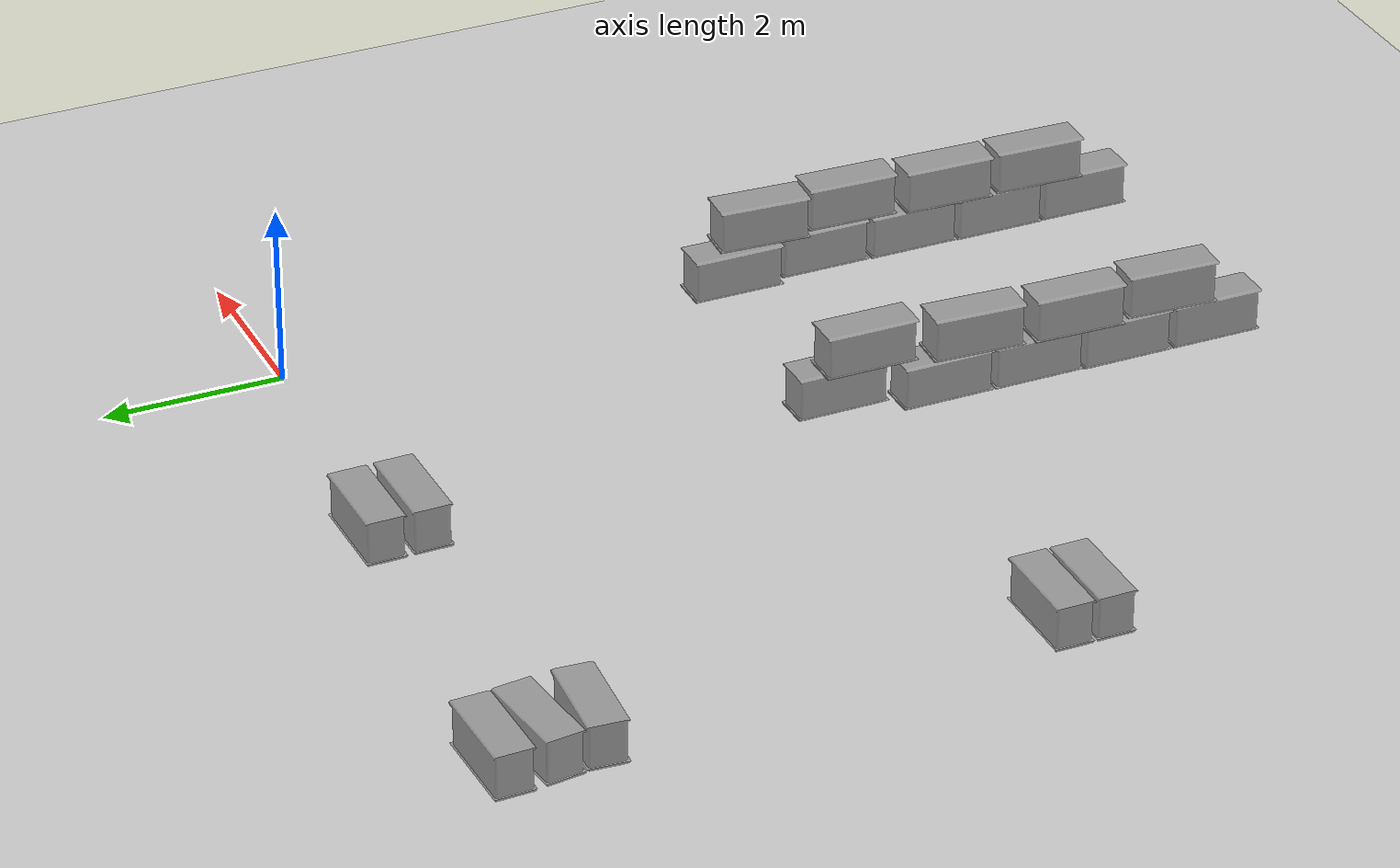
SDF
<sdf version="1.7">
 <world name="default">
  <model name="ground_plane">
   <static>1</static>
   <link name="link">
    <collision name="collision">
     <geometry><plane><normal>0 0 1</normal><size>100 100</size></plane></geometry>
     <surface>
      <contact><collide_bitmask>65535</collide_bitmask></contact>
      <friction><ode><mu>100</mu><mu2>50</mu2></ode></friction>
     </surface>
    </collision>
    <visual name="visual">
     <cast_shadows>0</cast_shadows>
     <geometry><plane><normal>0 0 1</normal><size>100 100</size></plane></geometry>
     <material>
      <script><uri>file://media/materials/scripts/gazebo.material</uri><name>Gazebo/Grey</name></script>
     </material>
    </visual>
   </link>
  </model>
  <model name="cotton_me_0_clone_6_clone_0_clone_clone_15">
   <link name="link_1">
    <inertial>
     <mass>1</mass>
     <inertia>
      <ixx>0.166667</ixx>
      <ixy>0</ixy>
      <ixz>0</ixz>
      <iyy>0.166667</iyy>
      <iyz>0</iyz>
      <izz>0.166667</izz>
     </inertia>
    </inertial>
    <visual name="visual">
     <geometry><mesh><uri>/home/cyun/cotton_box.stl</uri><scale>1 1 1</scale></mesh></geometry>
     <material>
      <lighting>1</lighting>
      <script><uri>file://media/materials/scripts/gazebo.material</uri><name>Gazebo/Grey</name></script>
      <shader type="pixel"/>
     </material>
    </visual>
    <collision name="collision">
     <geometry><mesh><uri>/home/cyun/cotton_box.stl</uri><scale>1 1 1</scale></mesh></geometry>
     <surface>
      <friction>
       <ode><mu>1</mu><mu2>1</mu2><fdir1>0 0 0</fdir1><slip1>0</slip1><slip2>0</slip2></ode>
       <torsional>
        <coefficient>1</coefficient>
        <patch_radius>0</patch_radius>
        <surface_radius>0</surface_radius>
        <use_patch_radius>1</use_patch_radius>
        <ode><slip>0</slip></ode>
       </torsional>
      </friction>
      <bounce><restitution_coefficient>0</restitution_coefficient><threshold>1e+06</threshold></bounce>
      <contact>
       <collide_without_contact>0</collide_without_contact>
       <collide_without_contact_bitmask>1</collide_without_contact_bitmask>
       <collide_bitmask>1</collide_bitmask>
       <ode>
        <soft_cfm>0</soft_cfm>
        <soft_erp>0.2</soft_erp>
        <kp>1e+13</kp>
        <kd>1</kd>
        <max_vel>0.01</max_vel>
        <min_depth>0</min_depth>
       </ode>
       <bullet>
        <split_impulse>1</split_impulse>
        <split_impulse_penetration_threshold>-0.01</split_impulse_penetration_threshold>
        <soft_cfm>0</soft_cfm>
        <soft_erp>0.2</soft_erp>
        <kp>1e+13</kp>
        <kd>1</kd>
       </bullet>
      </contact>
     </surface>
    </collision>
   </link>
   <static>0</static>
   <pose>-3.97472 0.085833 0.509999 1.1e-05 -0.000355 1.5813</pose>
  </model>
  <model name="cotton_me_0_clone_6_clone_0_clone_clone_16">
   <link name="link_1">
    <inertial>
     <mass>1</mass>
     <inertia>
      <ixx>0.166667</ixx>
      <ixy>0</ixy>
      <ixz>0</ixz>
      <iyy>0.166667</iyy>
      <iyz>0</iyz>
      <izz>0.166667</izz>
     </inertia>
    </inertial>
    <visual name="visual">
     <geometry><mesh><uri>/home/cyun/cotton_box.stl</uri><scale>1 1 1</scale></mesh></geometry>
     <material>
      <lighting>1</lighting>
      <script><uri>file://media/materials/scripts/gazebo.material</uri><name>Gazebo/Grey</name></script>
      <shader type="pixel"/>
     </material>
    </visual>
    <collision name="collision">
     <geometry><mesh><uri>/home/cyun/cotton_box.stl</uri><scale>1 1 1</scale></mesh></geometry>
     <surface>
      <friction>
       <ode><mu>1</mu><mu2>1</mu2><fdir1>0 0 0</fdir1><slip1>0</slip1><slip2>0</slip2></ode>
       <torsional>
        <coefficient>1</coefficient>
        <patch_radius>0</patch_radius>
        <surface_radius>0</surface_radius>
        <use_patch_radius>1</use_patch_radius>
        <ode><slip>0</slip></ode>
       </torsional>
      </friction>
      <bounce><restitution_coefficient>0</restitution_coefficient><threshold>1e+06</threshold></bounce>
      <contact>
       <collide_without_contact>0</collide_without_contact>
       <collide_without_contact_bitmask>1</collide_without_contact_bitmask>
       <collide_bitmask>1</collide_bitmask>
       <ode>
        <soft_cfm>0</soft_cfm>
        <soft_erp>0.2</soft_erp>
        <kp>1e+13</kp>
        <kd>1</kd>
        <max_vel>0.01</max_vel>
        <min_depth>0</min_depth>
       </ode>
       <bullet>
        <split_impulse>1</split_impulse>
        <split_impulse_penetration_threshold>-0.01</split_impulse_penetration_threshold>
        <soft_cfm>0</soft_cfm>
        <soft_erp>0.2</soft_erp>
        <kp>1e+13</kp>
        <kd>1</kd>
       </bullet>
      </contact>
     </surface>
    </collision>
   </link>
   <static>0</static>
   <pose>-3.98503 0.585185 0.510009 1.5e-05 8.8e-05 1.57835</pose>
  </model>
  <model name="cotton_me_0_clone_6_clone_0_clone_clone_21">
   <link name="link_1">
    <inertial>
     <mass>1</mass>
     <inertia>
      <ixx>0.166667</ixx>
      <ixy>0</ixy>
      <ixz>0</ixz>
      <iyy>0.166667</iyy>
      <iyz>0</iyz>
      <izz>0.166667</izz>
     </inertia>
    </inertial>
    <visual name="visual">
     <geometry><mesh><uri>/home/cyun/cotton_box.stl</uri><scale>1 1 1</scale></mesh></geometry>
     <material>
      <lighting>1</lighting>
      <script><uri>file://media/materials/scripts/gazebo.material</uri><name>Gazebo/Grey</name></script>
      <shader type="pixel"/>
     </material>
    </visual>
    <collision name="collision">
     <geometry><mesh><uri>/home/cyun/cotton_box.stl</uri><scale>1 1 1</scale></mesh></geometry>
     <surface>
      <friction>
       <ode><mu>1</mu><mu2>1</mu2><fdir1>0 0 0</fdir1><slip1>0</slip1><slip2>0</slip2></ode>
       <torsional>
        <coefficient>1</coefficient>
        <patch_radius>0</patch_radius>
        <surface_radius>0</surface_radius>
        <use_patch_radius>1</use_patch_radius>
        <ode><slip>0</slip></ode>
       </torsional>
      </friction>
      <bounce><restitution_coefficient>0</restitution_coefficient><threshold>1e+06</threshold></bounce>
      <contact>
       <collide_without_contact>0</collide_without_contact>
       <collide_without_contact_bitmask>1</collide_without_contact_bitmask>
       <collide_bitmask>1</collide_bitmask>
       <ode>
        <soft_cfm>0</soft_cfm>
        <soft_erp>0.2</soft_erp>
        <kp>1e+13</kp>
        <kd>1</kd>
        <max_vel>0.01</max_vel>
        <min_depth>0</min_depth>
       </ode>
       <bullet>
        <split_impulse>1</split_impulse>
        <split_impulse_penetration_threshold>-0.01</split_impulse_penetration_threshold>
        <soft_cfm>0</soft_cfm>
        <soft_erp>0.2</soft_erp>
        <kp>1e+13</kp>
        <kd>1</kd>
       </bullet>
      </contact>
     </surface>
    </collision>
   </link>
   <static>0</static>
   <pose>-8.10782 -0.038324 0.51 0 -1e-06 1.49665</pose>
  </model>
  <model name="cotton_me_0_clone_6_clone_0_clone_clone_22">
   <link name="link_1">
    <inertial>
     <mass>1</mass>
     <inertia>
      <ixx>0.166667</ixx>
      <ixy>0</ixy>
      <ixz>0</ixz>
      <iyy>0.166667</iyy>
      <iyz>0</iyz>
      <izz>0.166667</izz>
     </inertia>
    </inertial>
    <visual name="visual">
     <geometry><mesh><uri>/home/cyun/cotton_box.stl</uri><scale>1 1 1</scale></mesh></geometry>
     <material>
      <lighting>1</lighting>
      <script><uri>file://media/materials/scripts/gazebo.material</uri><name>Gazebo/Grey</name></script>
      <shader type="pixel"/>
     </material>
    </visual>
    <collision name="collision">
     <geometry><mesh><uri>/home/cyun/cotton_box.stl</uri><scale>1 1 1</scale></mesh></geometry>
     <surface>
      <friction>
       <ode><mu>1</mu><mu2>1</mu2><fdir1>0 0 0</fdir1><slip1>0</slip1><slip2>0</slip2></ode>
       <torsional>
        <coefficient>1</coefficient>
        <patch_radius>0</patch_radius>
        <surface_radius>0</surface_radius>
        <use_patch_radius>1</use_patch_radius>
        <ode><slip>0</slip></ode>
       </torsional>
      </friction>
      <bounce><restitution_coefficient>0</restitution_coefficient><threshold>1e+06</threshold></bounce>
      <contact>
       <collide_without_contact>0</collide_without_contact>
       <collide_without_contact_bitmask>1</collide_without_contact_bitmask>
       <collide_bitmask>1</collide_bitmask>
       <ode>
        <soft_cfm>0</soft_cfm>
        <soft_erp>0.2</soft_erp>
        <kp>1e+13</kp>
        <kd>1</kd>
        <max_vel>0.01</max_vel>
        <min_depth>0</min_depth>
       </ode>
       <bullet>
        <split_impulse>1</split_impulse>
        <split_impulse_penetration_threshold>-0.01</split_impulse_penetration_threshold>
        <soft_cfm>0</soft_cfm>
        <soft_erp>0.2</soft_erp>
        <kp>1e+13</kp>
        <kd>1</kd>
       </bullet>
      </contact>
     </surface>
    </collision>
   </link>
   <static>0</static>
   <pose>-8.13808 0.500494 0.510014 1.1e-05 7.3e-05 1.68525</pose>
  </model>
  <model name="cotton_me_0_clone_6_clone_0_clone_clone_23">
   <link name="link_1">
    <inertial>
     <mass>1</mass>
     <inertia>
      <ixx>0.166667</ixx>
      <ixy>0</ixy>
      <ixz>0</ixz>
      <iyy>0.166667</iyy>
      <iyz>0</iyz>
      <izz>0.166667</izz>
     </inertia>
    </inertial>
    <visual name="visual">
     <geometry><mesh><uri>/home/cyun/cotton_box.stl</uri><scale>1 1 1</scale></mesh></geometry>
     <material>
      <lighting>1</lighting>
      <script><uri>file://media/materials/scripts/gazebo.material</uri><name>Gazebo/Grey</name></script>
      <shader type="pixel"/>
     </material>
    </visual>
    <collision name="collision">
     <geometry><mesh><uri>/home/cyun/cotton_box.stl</uri><scale>1 1 1</scale></mesh></geometry>
     <surface>
      <friction>
       <ode><mu>1</mu><mu2>1</mu2><fdir1>0 0 0</fdir1><slip1>0</slip1><slip2>0</slip2></ode>
       <torsional>
        <coefficient>1</coefficient>
        <patch_radius>0</patch_radius>
        <surface_radius>0</surface_radius>
        <use_patch_radius>1</use_patch_radius>
        <ode><slip>0</slip></ode>
       </torsional>
      </friction>
      <bounce><restitution_coefficient>0</restitution_coefficient><threshold>1e+06</threshold></bounce>
      <contact>
       <collide_without_contact>0</collide_without_contact>
       <collide_without_contact_bitmask>1</collide_without_contact_bitmask>
       <collide_bitmask>1</collide_bitmask>
       <ode>
        <soft_cfm>0</soft_cfm>
        <soft_erp>0.2</soft_erp>
        <kp>1e+13</kp>
        <kd>1</kd>
        <max_vel>0.01</max_vel>
        <min_depth>0</min_depth>
       </ode>
       <bullet>
        <split_impulse>1</split_impulse>
        <split_impulse_penetration_threshold>-0.01</split_impulse_penetration_threshold>
        <soft_cfm>0</soft_cfm>
        <soft_erp>0.2</soft_erp>
        <kp>1e+13</kp>
        <kd>1</kd>
       </bullet>
      </contact>
     </surface>
    </collision>
   </link>
   <static>0</static>
   <pose>-8.18548 0.984813 0.509982 1.1e-05 -5e-06 1.59391</pose>
  </model>
  <model name="cotton_new">
   <link name="link_0">
    <inertial>
     <mass>1</mass>
     <inertia>
      <ixx>0.166667</ixx>
      <ixy>0</ixy>
      <ixz>0</ixz>
      <iyy>0.166667</iyy>
      <iyz>0</iyz>
      <izz>0.166667</izz>
     </inertia>
    </inertial>
    <visual name="visual">
     <geometry><mesh><uri>/home/cyun/cotton_new2.obj</uri><scale>1 1 1</scale></mesh></geometry>
     <material>
      <lighting>1</lighting>
      <script><uri>file://media/materials/scripts/gazebo.material</uri><name>Gazebo/Grey</name></script>
      <shader type="pixel"/>
     </material>
    </visual>
    <collision name="collision">
     <geometry><mesh><uri>/home/cyun/cotton_new2.obj</uri><scale>1 1 1</scale></mesh></geometry>
     <surface>
      <friction>
       <ode><mu>1</mu><mu2>1</mu2><fdir1>0 0 0</fdir1><slip1>0</slip1><slip2>0</slip2></ode>
       <torsional>
        <coefficient>1</coefficient>
        <patch_radius>0</patch_radius>
        <surface_radius>0</surface_radius>
        <use_patch_radius>1</use_patch_radius>
        <ode><slip>0</slip></ode>
       </torsional>
      </friction>
      <bounce><restitution_coefficient>0</restitution_coefficient><threshold>1e+06</threshold></bounce>
      <contact>
       <collide_without_contact>0</collide_without_contact>
       <collide_without_contact_bitmask>1</collide_without_contact_bitmask>
       <collide_bitmask>1</collide_bitmask>
       <ode>
        <soft_cfm>0</soft_cfm>
        <soft_erp>0.2</soft_erp>
        <kp>1e+13</kp>
        <kd>1</kd>
        <max_vel>0.01</max_vel>
        <min_depth>0</min_depth>
       </ode>
       <bullet>
        <split_impulse>1</split_impulse>
        <split_impulse_penetration_threshold>-0.01</split_impulse_penetration_threshold>
        <soft_cfm>0</soft_cfm>
        <soft_erp>0.2</soft_erp>
        <kp>1e+13</kp>
        <kd>1</kd>
       </bullet>
      </contact>
     </surface>
    </collision>
   </link>
   <static>0</static>
   <pose>-7.46258 -5.25887 2e-06 0 6e-06 0</pose>
  </model>
  <model name="cotton_me_0">
   <link name="link_1">
    <inertial>
     <mass>1</mass>
     <inertia>
      <ixx>0.166667</ixx>
      <ixy>0</ixy>
      <ixz>0</ixz>
      <iyy>0.166667</iyy>
      <iyz>0</iyz>
      <izz>0.166667</izz>
     </inertia>
    </inertial>
    <visual name="visual">
     <geometry><mesh><uri>/home/cyun/cotton_box.stl</uri><scale>1 1 1</scale></mesh></geometry>
     <material>
      <lighting>1</lighting>
      <script><uri>file://media/materials/scripts/gazebo.material</uri><name>Gazebo/Grey</name></script>
      <shader type="pixel"/>
     </material>
    </visual>
    <collision name="collision">
     <geometry><mesh><uri>/home/cyun/cotton_box.stl</uri><scale>1 1 1</scale></mesh></geometry>
     <surface>
      <friction>
       <ode><mu>1</mu><mu2>1</mu2><fdir1>0 0 0</fdir1><slip1>0</slip1><slip2>0</slip2></ode>
       <torsional>
        <coefficient>1</coefficient>
        <patch_radius>0</patch_radius>
        <surface_radius>0</surface_radius>
        <use_patch_radius>1</use_patch_radius>
        <ode><slip>0</slip></ode>
       </torsional>
      </friction>
      <bounce><restitution_coefficient>0</restitution_coefficient><threshold>1e+06</threshold></bounce>
      <contact>
       <collide_without_contact>0</collide_without_contact>
       <collide_without_contact_bitmask>1</collide_without_contact_bitmask>
       <collide_bitmask>1</collide_bitmask>
       <ode>
        <soft_cfm>0</soft_cfm>
        <soft_erp>0.2</soft_erp>
        <kp>1e+13</kp>
        <kd>1</kd>
        <max_vel>0.01</max_vel>
        <min_depth>0</min_depth>
       </ode>
       <bullet>
        <split_impulse>1</split_impulse>
        <split_impulse_penetration_threshold>-0.01</split_impulse_penetration_threshold>
        <soft_cfm>0</soft_cfm>
        <soft_erp>0.2</soft_erp>
        <kp>1e+13</kp>
        <kd>1</kd>
       </bullet>
      </contact>
     </surface>
    </collision>
   </link>
   <static>0</static>
   <pose>-3.12252 -9.42177 0.019976 2e-06 4e-06 -0.003326</pose>
  </model>
  <model name="cotton_me_0_clone">
   <link name="link_1">
    <inertial>
     <mass>1</mass>
     <inertia>
      <ixx>0.166667</ixx>
      <ixy>0</ixy>
      <ixz>0</ixz>
      <iyy>0.166667</iyy>
      <iyz>0</iyz>
      <izz>0.166667</izz>
     </inertia>
    </inertial>
    <visual name="visual">
     <geometry><mesh><uri>/home/cyun/cotton_box.stl</uri><scale>1 1 1</scale></mesh></geometry>
     <material>
      <lighting>1</lighting>
      <script><uri>file://media/materials/scripts/gazebo.material</uri><name>Gazebo/Grey</name></script>
      <shader type="pixel"/>
     </material>
    </visual>
    <collision name="collision">
     <geometry><mesh><uri>/home/cyun/cotton_box.stl</uri><scale>1 1 1</scale></mesh></geometry>
     <surface>
      <friction>
       <ode><mu>1</mu><mu2>1</mu2><fdir1>0 0 0</fdir1><slip1>0</slip1><slip2>0</slip2></ode>
       <torsional>
        <coefficient>1</coefficient>
        <patch_radius>0</patch_radius>
        <surface_radius>0</surface_radius>
        <use_patch_radius>1</use_patch_radius>
        <ode><slip>0</slip></ode>
       </torsional>
      </friction>
      <bounce><restitution_coefficient>0</restitution_coefficient><threshold>1e+06</threshold></bounce>
      <contact>
       <collide_without_contact>0</collide_without_contact>
       <collide_without_contact_bitmask>1</collide_without_contact_bitmask>
       <collide_bitmask>1</collide_bitmask>
       <ode>
        <soft_cfm>0</soft_cfm>
        <soft_erp>0.2</soft_erp>
        <kp>1e+13</kp>
        <kd>1</kd>
        <max_vel>0.01</max_vel>
        <min_depth>0</min_depth>
       </ode>
       <bullet>
        <split_impulse>1</split_impulse>
        <split_impulse_penetration_threshold>-0.01</split_impulse_penetration_threshold>
        <soft_cfm>0</soft_cfm>
        <soft_erp>0.2</soft_erp>
        <kp>1e+13</kp>
        <kd>1</kd>
       </bullet>
      </contact>
     </surface>
    </collision>
   </link>
   <static>0</static>
   <pose>-3.11952 -8.34568 0.019974 -1.3e-05 -0 -0.00161</pose>
  </model>
  <model name="cotton_me_0_clone_0">
   <link name="link_1">
    <inertial>
     <mass>1</mass>
     <inertia>
      <ixx>0.166667</ixx>
      <ixy>0</ixy>
      <ixz>0</ixz>
      <iyy>0.166667</iyy>
      <iyz>0</iyz>
      <izz>0.166667</izz>
     </inertia>
    </inertial>
    <visual name="visual">
     <geometry><mesh><uri>/home/cyun/cotton_box.stl</uri><scale>1 1 1</scale></mesh></geometry>
     <material>
      <lighting>1</lighting>
      <script><uri>file://media/materials/scripts/gazebo.material</uri><name>Gazebo/Grey</name></script>
      <shader type="pixel"/>
     </material>
    </visual>
    <collision name="collision">
     <geometry><mesh><uri>/home/cyun/cotton_box.stl</uri><scale>1 1 1</scale></mesh></geometry>
     <surface>
      <friction>
       <ode><mu>1</mu><mu2>1</mu2><fdir1>0 0 0</fdir1><slip1>0</slip1><slip2>0</slip2></ode>
       <torsional>
        <coefficient>1</coefficient>
        <patch_radius>0</patch_radius>
        <surface_radius>0</surface_radius>
        <use_patch_radius>1</use_patch_radius>
        <ode><slip>0</slip></ode>
       </torsional>
      </friction>
      <bounce><restitution_coefficient>0</restitution_coefficient><threshold>1e+06</threshold></bounce>
      <contact>
       <collide_without_contact>0</collide_without_contact>
       <collide_without_contact_bitmask>1</collide_without_contact_bitmask>
       <collide_bitmask>1</collide_bitmask>
       <ode>
        <soft_cfm>0</soft_cfm>
        <soft_erp>0.2</soft_erp>
        <kp>1e+13</kp>
        <kd>1</kd>
        <max_vel>0.01</max_vel>
        <min_depth>0</min_depth>
       </ode>
       <bullet>
        <split_impulse>1</split_impulse>
        <split_impulse_penetration_threshold>-0.01</split_impulse_penetration_threshold>
        <soft_cfm>0</soft_cfm>
        <soft_erp>0.2</soft_erp>
        <kp>1e+13</kp>
        <kd>1</kd>
       </bullet>
      </contact>
     </surface>
    </collision>
   </link>
   <static>0</static>
   <pose>-3.09922 -7.29962 0.019984 3e-06 -5e-06 -0.000715</pose>
  </model>
  <model name="cotton_me_0_clone_1">
   <link name="link_1">
    <inertial>
     <mass>1</mass>
     <inertia>
      <ixx>0.166667</ixx>
      <ixy>0</ixy>
      <ixz>0</ixz>
      <iyy>0.166667</iyy>
      <iyz>0</iyz>
      <izz>0.166667</izz>
     </inertia>
    </inertial>
    <visual name="visual">
     <geometry><mesh><uri>/home/cyun/cotton_box.stl</uri><scale>1 1 1</scale></mesh></geometry>
     <material>
      <lighting>1</lighting>
      <script><uri>file://media/materials/scripts/gazebo.material</uri><name>Gazebo/Grey</name></script>
      <shader type="pixel"/>
     </material>
    </visual>
    <collision name="collision">
     <geometry><mesh><uri>/home/cyun/cotton_box.stl</uri><scale>1 1 1</scale></mesh></geometry>
     <surface>
      <friction>
       <ode><mu>1</mu><mu2>1</mu2><fdir1>0 0 0</fdir1><slip1>0</slip1><slip2>0</slip2></ode>
       <torsional>
        <coefficient>1</coefficient>
        <patch_radius>0</patch_radius>
        <surface_radius>0</surface_radius>
        <use_patch_radius>1</use_patch_radius>
        <ode><slip>0</slip></ode>
       </torsional>
      </friction>
      <bounce><restitution_coefficient>0</restitution_coefficient><threshold>1e+06</threshold></bounce>
      <contact>
       <collide_without_contact>0</collide_without_contact>
       <collide_without_contact_bitmask>1</collide_without_contact_bitmask>
       <collide_bitmask>1</collide_bitmask>
       <ode>
        <soft_cfm>0</soft_cfm>
        <soft_erp>0.2</soft_erp>
        <kp>1e+13</kp>
        <kd>1</kd>
        <max_vel>0.01</max_vel>
        <min_depth>0</min_depth>
       </ode>
       <bullet>
        <split_impulse>1</split_impulse>
        <split_impulse_penetration_threshold>-0.01</split_impulse_penetration_threshold>
        <soft_cfm>0</soft_cfm>
        <soft_erp>0.2</soft_erp>
        <kp>1e+13</kp>
        <kd>1</kd>
       </bullet>
      </contact>
     </surface>
    </collision>
   </link>
   <static>0</static>
   <pose>-3.09324 -6.23497 0.019936 3e-05 -8e-06 0.001467</pose>
  </model>
  <model name="cotton_me_0_clone_2">
   <link name="link_1">
    <inertial>
     <mass>1</mass>
     <inertia>
      <ixx>0.166667</ixx>
      <ixy>0</ixy>
      <ixz>0</ixz>
      <iyy>0.166667</iyy>
      <iyz>0</iyz>
      <izz>0.166667</izz>
     </inertia>
    </inertial>
    <visual name="visual">
     <geometry><mesh><uri>/home/cyun/cotton_box.stl</uri><scale>1 1 1</scale></mesh></geometry>
     <material>
      <lighting>1</lighting>
      <script><uri>file://media/materials/scripts/gazebo.material</uri><name>Gazebo/Grey</name></script>
      <shader type="pixel"/>
     </material>
    </visual>
    <collision name="collision">
     <geometry><mesh><uri>/home/cyun/cotton_box.stl</uri><scale>1 1 1</scale></mesh></geometry>
     <surface>
      <friction>
       <ode><mu>1</mu><mu2>1</mu2><fdir1>0 0 0</fdir1><slip1>0</slip1><slip2>0</slip2></ode>
       <torsional>
        <coefficient>1</coefficient>
        <patch_radius>0</patch_radius>
        <surface_radius>0</surface_radius>
        <use_patch_radius>1</use_patch_radius>
        <ode><slip>0</slip></ode>
       </torsional>
      </friction>
      <bounce><restitution_coefficient>0</restitution_coefficient><threshold>1e+06</threshold></bounce>
      <contact>
       <collide_without_contact>0</collide_without_contact>
       <collide_without_contact_bitmask>1</collide_without_contact_bitmask>
       <collide_bitmask>1</collide_bitmask>
       <ode>
        <soft_cfm>0</soft_cfm>
        <soft_erp>0.2</soft_erp>
        <kp>1e+13</kp>
        <kd>1</kd>
        <max_vel>0.01</max_vel>
        <min_depth>0</min_depth>
       </ode>
       <bullet>
        <split_impulse>1</split_impulse>
        <split_impulse_penetration_threshold>-0.01</split_impulse_penetration_threshold>
        <soft_cfm>0</soft_cfm>
        <soft_erp>0.2</soft_erp>
        <kp>1e+13</kp>
        <kd>1</kd>
       </bullet>
      </contact>
     </surface>
    </collision>
   </link>
   <static>0</static>
   <pose>-0.065223 -9.43682 0.02 0 -0 -0.002225</pose>
  </model>
  <model name="cotton_me_0_clone_3">
   <link name="link_1">
    <inertial>
     <mass>1</mass>
     <inertia>
      <ixx>0.166667</ixx>
      <ixy>0</ixy>
      <ixz>0</ixz>
      <iyy>0.166667</iyy>
      <iyz>0</iyz>
      <izz>0.166667</izz>
     </inertia>
    </inertial>
    <visual name="visual">
     <geometry><mesh><uri>/home/cyun/cotton_box.stl</uri><scale>1 1 1</scale></mesh></geometry>
     <material>
      <lighting>1</lighting>
      <script><uri>file://media/materials/scripts/gazebo.material</uri><name>Gazebo/Grey</name></script>
      <shader type="pixel"/>
     </material>
    </visual>
    <collision name="collision">
     <geometry><mesh><uri>/home/cyun/cotton_box.stl</uri><scale>1 1 1</scale></mesh></geometry>
     <surface>
      <friction>
       <ode><mu>1</mu><mu2>1</mu2><fdir1>0 0 0</fdir1><slip1>0</slip1><slip2>0</slip2></ode>
       <torsional>
        <coefficient>1</coefficient>
        <patch_radius>0</patch_radius>
        <surface_radius>0</surface_radius>
        <use_patch_radius>1</use_patch_radius>
        <ode><slip>0</slip></ode>
       </torsional>
      </friction>
      <bounce><restitution_coefficient>0</restitution_coefficient><threshold>1e+06</threshold></bounce>
      <contact>
       <collide_without_contact>0</collide_without_contact>
       <collide_without_contact_bitmask>1</collide_without_contact_bitmask>
       <collide_bitmask>1</collide_bitmask>
       <ode>
        <soft_cfm>0</soft_cfm>
        <soft_erp>0.2</soft_erp>
        <kp>1e+13</kp>
        <kd>1</kd>
        <max_vel>0.01</max_vel>
        <min_depth>0</min_depth>
       </ode>
       <bullet>
        <split_impulse>1</split_impulse>
        <split_impulse_penetration_threshold>-0.01</split_impulse_penetration_threshold>
        <soft_cfm>0</soft_cfm>
        <soft_erp>0.2</soft_erp>
        <kp>1e+13</kp>
        <kd>1</kd>
       </bullet>
      </contact>
     </surface>
    </collision>
   </link>
   <static>0</static>
   <pose>-0.072835 -8.38109 0.019972 2.6e-05 -6e-06 0.000695</pose>
  </model>
  <model name="cotton_me_0_clone_4">
   <link name="link_1">
    <inertial>
     <mass>1</mass>
     <inertia>
      <ixx>0.166667</ixx>
      <ixy>0</ixy>
      <ixz>0</ixz>
      <iyy>0.166667</iyy>
      <iyz>0</iyz>
      <izz>0.166667</izz>
     </inertia>
    </inertial>
    <visual name="visual">
     <geometry><mesh><uri>/home/cyun/cotton_box.stl</uri><scale>1 1 1</scale></mesh></geometry>
     <material>
      <lighting>1</lighting>
      <script><uri>file://media/materials/scripts/gazebo.material</uri><name>Gazebo/Grey</name></script>
      <shader type="pixel"/>
     </material>
    </visual>
    <collision name="collision">
     <geometry><mesh><uri>/home/cyun/cotton_box.stl</uri><scale>1 1 1</scale></mesh></geometry>
     <surface>
      <friction>
       <ode><mu>1</mu><mu2>1</mu2><fdir1>0 0 0</fdir1><slip1>0</slip1><slip2>0</slip2></ode>
       <torsional>
        <coefficient>1</coefficient>
        <patch_radius>0</patch_radius>
        <surface_radius>0</surface_radius>
        <use_patch_radius>1</use_patch_radius>
        <ode><slip>0</slip></ode>
       </torsional>
      </friction>
      <bounce><restitution_coefficient>0</restitution_coefficient><threshold>1e+06</threshold></bounce>
      <contact>
       <collide_without_contact>0</collide_without_contact>
       <collide_without_contact_bitmask>1</collide_without_contact_bitmask>
       <collide_bitmask>1</collide_bitmask>
       <ode>
        <soft_cfm>0</soft_cfm>
        <soft_erp>0.2</soft_erp>
        <kp>1e+13</kp>
        <kd>1</kd>
        <max_vel>0.01</max_vel>
        <min_depth>0</min_depth>
       </ode>
       <bullet>
        <split_impulse>1</split_impulse>
        <split_impulse_penetration_threshold>-0.01</split_impulse_penetration_threshold>
        <soft_cfm>0</soft_cfm>
        <soft_erp>0.2</soft_erp>
        <kp>1e+13</kp>
        <kd>1</kd>
       </bullet>
      </contact>
     </surface>
    </collision>
   </link>
   <static>0</static>
   <pose>-0.059438 -7.32904 0.019957 5e-06 -5e-06 0.001618</pose>
  </model>
  <model name="cotton_me_0_clone_5">
   <link name="link_1">
    <inertial>
     <mass>1</mass>
     <inertia>
      <ixx>0.166667</ixx>
      <ixy>0</ixy>
      <ixz>0</ixz>
      <iyy>0.166667</iyy>
      <iyz>0</iyz>
      <izz>0.166667</izz>
     </inertia>
    </inertial>
    <visual name="visual">
     <geometry><mesh><uri>/home/cyun/cotton_box.stl</uri><scale>1 1 1</scale></mesh></geometry>
     <material>
      <lighting>1</lighting>
      <script><uri>file://media/materials/scripts/gazebo.material</uri><name>Gazebo/Grey</name></script>
      <shader type="pixel"/>
     </material>
    </visual>
    <collision name="collision">
     <geometry><mesh><uri>/home/cyun/cotton_box.stl</uri><scale>1 1 1</scale></mesh></geometry>
     <surface>
      <friction>
       <ode><mu>1</mu><mu2>1</mu2><fdir1>0 0 0</fdir1><slip1>0</slip1><slip2>0</slip2></ode>
       <torsional>
        <coefficient>1</coefficient>
        <patch_radius>0</patch_radius>
        <surface_radius>0</surface_radius>
        <use_patch_radius>1</use_patch_radius>
        <ode><slip>0</slip></ode>
       </torsional>
      </friction>
      <bounce><restitution_coefficient>0</restitution_coefficient><threshold>1e+06</threshold></bounce>
      <contact>
       <collide_without_contact>0</collide_without_contact>
       <collide_without_contact_bitmask>1</collide_without_contact_bitmask>
       <collide_bitmask>1</collide_bitmask>
       <ode>
        <soft_cfm>0</soft_cfm>
        <soft_erp>0.2</soft_erp>
        <kp>1e+13</kp>
        <kd>1</kd>
        <max_vel>0.01</max_vel>
        <min_depth>0</min_depth>
       </ode>
       <bullet>
        <split_impulse>1</split_impulse>
        <split_impulse_penetration_threshold>-0.01</split_impulse_penetration_threshold>
        <soft_cfm>0</soft_cfm>
        <soft_erp>0.2</soft_erp>
        <kp>1e+13</kp>
        <kd>1</kd>
       </bullet>
      </contact>
     </surface>
    </collision>
   </link>
   <static>0</static>
   <pose>-0.047782 -6.254 0.01998 2e-05 -2e-06 -0.001166</pose>
  </model>
  <model name="cotton_me_0_clone_11">
   <link name="link_1">
    <inertial>
     <mass>1</mass>
     <inertia>
      <ixx>0.166667</ixx>
      <ixy>0</ixy>
      <ixz>0</ixz>
      <iyy>0.166667</iyy>
      <iyz>0</iyz>
      <izz>0.166667</izz>
     </inertia>
    </inertial>
    <visual name="visual">
     <geometry><mesh><uri>/home/cyun/cotton_box.stl</uri><scale>1 1 1</scale></mesh></geometry>
     <material>
      <lighting>1</lighting>
      <script><uri>file://media/materials/scripts/gazebo.material</uri><name>Gazebo/Grey</name></script>
      <shader type="pixel"/>
     </material>
    </visual>
    <collision name="collision">
     <geometry><mesh><uri>/home/cyun/cotton_box.stl</uri><scale>1 1 1</scale></mesh></geometry>
     <surface>
      <friction>
       <ode><mu>1</mu><mu2>1</mu2><fdir1>0 0 0</fdir1><slip1>0</slip1><slip2>0</slip2></ode>
       <torsional>
        <coefficient>1</coefficient>
        <patch_radius>0</patch_radius>
        <surface_radius>0</surface_radius>
        <use_patch_radius>1</use_patch_radius>
        <ode><slip>0</slip></ode>
       </torsional>
      </friction>
      <bounce><restitution_coefficient>0</restitution_coefficient><threshold>1e+06</threshold></bounce>
      <contact>
       <collide_without_contact>0</collide_without_contact>
       <collide_without_contact_bitmask>1</collide_without_contact_bitmask>
       <collide_bitmask>1</collide_bitmask>
       <ode>
        <soft_cfm>0</soft_cfm>
        <soft_erp>0.2</soft_erp>
        <kp>1e+13</kp>
        <kd>1</kd>
        <max_vel>0.01</max_vel>
        <min_depth>0</min_depth>
       </ode>
       <bullet>
        <split_impulse>1</split_impulse>
        <split_impulse_penetration_threshold>-0.01</split_impulse_penetration_threshold>
        <soft_cfm>0</soft_cfm>
        <soft_erp>0.2</soft_erp>
        <kp>1e+13</kp>
        <kd>1</kd>
       </bullet>
      </contact>
     </surface>
    </collision>
   </link>
   <static>0</static>
   <pose>-0.16463 -5.16317 0.019911 2e-06 1.5e-05 -0.004202</pose>
  </model>
  <model name="cotton_me_0_clone_12">
   <link name="link_1">
    <inertial>
     <mass>1</mass>
     <inertia>
      <ixx>0.166667</ixx>
      <ixy>0</ixy>
      <ixz>0</ixz>
      <iyy>0.166667</iyy>
      <iyz>0</iyz>
      <izz>0.166667</izz>
     </inertia>
    </inertial>
    <visual name="visual">
     <geometry><mesh><uri>/home/cyun/cotton_box.stl</uri><scale>1 1 1</scale></mesh></geometry>
     <material>
      <lighting>1</lighting>
      <script><uri>file://media/materials/scripts/gazebo.material</uri><name>Gazebo/Grey</name></script>
      <shader type="pixel"/>
     </material>
    </visual>
    <collision name="collision">
     <geometry><mesh><uri>/home/cyun/cotton_box.stl</uri><scale>1 1 1</scale></mesh></geometry>
     <surface>
      <friction>
       <ode><mu>1</mu><mu2>1</mu2><fdir1>0 0 0</fdir1><slip1>0</slip1><slip2>0</slip2></ode>
       <torsional>
        <coefficient>1</coefficient>
        <patch_radius>0</patch_radius>
        <surface_radius>0</surface_radius>
        <use_patch_radius>1</use_patch_radius>
        <ode><slip>0</slip></ode>
       </torsional>
      </friction>
      <bounce><restitution_coefficient>0</restitution_coefficient><threshold>1e+06</threshold></bounce>
      <contact>
       <collide_without_contact>0</collide_without_contact>
       <collide_without_contact_bitmask>1</collide_without_contact_bitmask>
       <collide_bitmask>1</collide_bitmask>
       <ode>
        <soft_cfm>0</soft_cfm>
        <soft_erp>0.2</soft_erp>
        <kp>1e+13</kp>
        <kd>1</kd>
        <max_vel>0.01</max_vel>
        <min_depth>0</min_depth>
       </ode>
       <bullet>
        <split_impulse>1</split_impulse>
        <split_impulse_penetration_threshold>-0.01</split_impulse_penetration_threshold>
        <soft_cfm>0</soft_cfm>
        <soft_erp>0.2</soft_erp>
        <kp>1e+13</kp>
        <kd>1</kd>
       </bullet>
      </contact>
     </surface>
    </collision>
   </link>
   <static>0</static>
   <pose>-2.83882 -5.12877 0.020001 -4e-06 2e-06 0.005363</pose>
  </model>
  <model name="cotton_me_0_clone_6_clone_clone_3">
   <link name="link_1">
    <inertial>
     <mass>1</mass>
     <inertia>
      <ixx>0.166667</ixx>
      <ixy>0</ixy>
      <ixz>0</ixz>
      <iyy>0.166667</iyy>
      <iyz>0</iyz>
      <izz>0.166667</izz>
     </inertia>
    </inertial>
    <visual name="visual">
     <geometry><mesh><uri>/home/cyun/cotton_box.stl</uri><scale>1 1 1</scale></mesh></geometry>
     <material>
      <lighting>1</lighting>
      <script><uri>file://media/materials/scripts/gazebo.material</uri><name>Gazebo/Grey</name></script>
      <shader type="pixel"/>
     </material>
    </visual>
    <collision name="collision">
     <geometry><mesh><uri>/home/cyun/cotton_box.stl</uri><scale>1 1 1</scale></mesh></geometry>
     <surface>
      <friction>
       <ode><mu>1</mu><mu2>1</mu2><fdir1>0 0 0</fdir1><slip1>0</slip1><slip2>0</slip2></ode>
       <torsional>
        <coefficient>1</coefficient>
        <patch_radius>0</patch_radius>
        <surface_radius>0</surface_radius>
        <use_patch_radius>1</use_patch_radius>
        <ode><slip>0</slip></ode>
       </torsional>
      </friction>
      <bounce><restitution_coefficient>0</restitution_coefficient><threshold>1e+06</threshold></bounce>
      <contact>
       <collide_without_contact>0</collide_without_contact>
       <collide_without_contact_bitmask>1</collide_without_contact_bitmask>
       <collide_bitmask>1</collide_bitmask>
       <ode>
        <soft_cfm>0</soft_cfm>
        <soft_erp>0.2</soft_erp>
        <kp>1e+13</kp>
        <kd>1</kd>
        <max_vel>0.01</max_vel>
        <min_depth>0</min_depth>
       </ode>
       <bullet>
        <split_impulse>1</split_impulse>
        <split_impulse_penetration_threshold>-0.01</split_impulse_penetration_threshold>
        <soft_cfm>0</soft_cfm>
        <soft_erp>0.2</soft_erp>
        <kp>1e+13</kp>
        <kd>1</kd>
       </bullet>
      </contact>
     </surface>
    </collision>
   </link>
   <static>0</static>
   <pose>-0.113682 -8.84153 0.509986 -2.6e-05 -5e-06 -0.030221</pose>
  </model>
  <model name="cotton_me_0_clone_6_clone_clone_4">
   <link name="link_1">
    <inertial>
     <mass>1</mass>
     <inertia>
      <ixx>0.166667</ixx>
      <ixy>0</ixy>
      <ixz>0</ixz>
      <iyy>0.166667</iyy>
      <iyz>0</iyz>
      <izz>0.166667</izz>
     </inertia>
    </inertial>
    <visual name="visual">
     <geometry><mesh><uri>/home/cyun/cotton_box.stl</uri><scale>1 1 1</scale></mesh></geometry>
     <material>
      <lighting>1</lighting>
      <script><uri>file://media/materials/scripts/gazebo.material</uri><name>Gazebo/Grey</name></script>
      <shader type="pixel"/>
     </material>
    </visual>
    <collision name="collision">
     <geometry><mesh><uri>/home/cyun/cotton_box.stl</uri><scale>1 1 1</scale></mesh></geometry>
     <surface>
      <friction>
       <ode><mu>1</mu><mu2>1</mu2><fdir1>0 0 0</fdir1><slip1>0</slip1><slip2>0</slip2></ode>
       <torsional>
        <coefficient>1</coefficient>
        <patch_radius>0</patch_radius>
        <surface_radius>0</surface_radius>
        <use_patch_radius>1</use_patch_radius>
        <ode><slip>0</slip></ode>
       </torsional>
      </friction>
      <bounce><restitution_coefficient>0</restitution_coefficient><threshold>1e+06</threshold></bounce>
      <contact>
       <collide_without_contact>0</collide_without_contact>
       <collide_without_contact_bitmask>1</collide_without_contact_bitmask>
       <collide_bitmask>1</collide_bitmask>
       <ode>
        <soft_cfm>0</soft_cfm>
        <soft_erp>0.2</soft_erp>
        <kp>1e+13</kp>
        <kd>1</kd>
        <max_vel>0.01</max_vel>
        <min_depth>0</min_depth>
       </ode>
       <bullet>
        <split_impulse>1</split_impulse>
        <split_impulse_penetration_threshold>-0.01</split_impulse_penetration_threshold>
        <soft_cfm>0</soft_cfm>
        <soft_erp>0.2</soft_erp>
        <kp>1e+13</kp>
        <kd>1</kd>
       </bullet>
      </contact>
     </surface>
    </collision>
   </link>
   <static>0</static>
   <pose>-0.108263 -7.73271 0.509992 9e-06 -3e-06 -0.027403</pose>
  </model>
  <model name="cotton_me_0_clone_6_clone_clone_5">
   <link name="link_1">
    <inertial>
     <mass>1</mass>
     <inertia>
      <ixx>0.166667</ixx>
      <ixy>0</ixy>
      <ixz>0</ixz>
      <iyy>0.166667</iyy>
      <iyz>0</iyz>
      <izz>0.166667</izz>
     </inertia>
    </inertial>
    <visual name="visual">
     <geometry><mesh><uri>/home/cyun/cotton_box.stl</uri><scale>1 1 1</scale></mesh></geometry>
     <material>
      <lighting>1</lighting>
      <script><uri>file://media/materials/scripts/gazebo.material</uri><name>Gazebo/Grey</name></script>
      <shader type="pixel"/>
     </material>
    </visual>
    <collision name="collision">
     <geometry><mesh><uri>/home/cyun/cotton_box.stl</uri><scale>1 1 1</scale></mesh></geometry>
     <surface>
      <friction>
       <ode><mu>1</mu><mu2>1</mu2><fdir1>0 0 0</fdir1><slip1>0</slip1><slip2>0</slip2></ode>
       <torsional>
        <coefficient>1</coefficient>
        <patch_radius>0</patch_radius>
        <surface_radius>0</surface_radius>
        <use_patch_radius>1</use_patch_radius>
        <ode><slip>0</slip></ode>
       </torsional>
      </friction>
      <bounce><restitution_coefficient>0</restitution_coefficient><threshold>1e+06</threshold></bounce>
      <contact>
       <collide_without_contact>0</collide_without_contact>
       <collide_without_contact_bitmask>1</collide_without_contact_bitmask>
       <collide_bitmask>1</collide_bitmask>
       <ode>
        <soft_cfm>0</soft_cfm>
        <soft_erp>0.2</soft_erp>
        <kp>1e+13</kp>
        <kd>1</kd>
        <max_vel>0.01</max_vel>
        <min_depth>0</min_depth>
       </ode>
       <bullet>
        <split_impulse>1</split_impulse>
        <split_impulse_penetration_threshold>-0.01</split_impulse_penetration_threshold>
        <soft_cfm>0</soft_cfm>
        <soft_erp>0.2</soft_erp>
        <kp>1e+13</kp>
        <kd>1</kd>
       </bullet>
      </contact>
     </surface>
    </collision>
   </link>
   <static>0</static>
   <pose>-0.024295 -6.59604 0.509974 5e-06 -7.1e-05 -0.031221</pose>
  </model>
  <model name="cotton_me_0_clone_6_clone_clone_6">
   <link name="link_1">
    <inertial>
     <mass>1</mass>
     <inertia>
      <ixx>0.166667</ixx>
      <ixy>0</ixy>
      <ixz>0</ixz>
      <iyy>0.166667</iyy>
      <iyz>0</iyz>
      <izz>0.166667</izz>
     </inertia>
    </inertial>
    <visual name="visual">
     <geometry><mesh><uri>/home/cyun/cotton_box.stl</uri><scale>1 1 1</scale></mesh></geometry>
     <material>
      <lighting>1</lighting>
      <script><uri>file://media/materials/scripts/gazebo.material</uri><name>Gazebo/Grey</name></script>
      <shader type="pixel"/>
     </material>
    </visual>
    <collision name="collision">
     <geometry><mesh><uri>/home/cyun/cotton_box.stl</uri><scale>1 1 1</scale></mesh></geometry>
     <surface>
      <friction>
       <ode><mu>1</mu><mu2>1</mu2><fdir1>0 0 0</fdir1><slip1>0</slip1><slip2>0</slip2></ode>
       <torsional>
        <coefficient>1</coefficient>
        <patch_radius>0</patch_radius>
        <surface_radius>0</surface_radius>
        <use_patch_radius>1</use_patch_radius>
        <ode><slip>0</slip></ode>
       </torsional>
      </friction>
      <bounce><restitution_coefficient>0</restitution_coefficient><threshold>1e+06</threshold></bounce>
      <contact>
       <collide_without_contact>0</collide_without_contact>
       <collide_without_contact_bitmask>1</collide_without_contact_bitmask>
       <collide_bitmask>1</collide_bitmask>
       <ode>
        <soft_cfm>0</soft_cfm>
        <soft_erp>0.2</soft_erp>
        <kp>1e+13</kp>
        <kd>1</kd>
        <max_vel>0.01</max_vel>
        <min_depth>0</min_depth>
       </ode>
       <bullet>
        <split_impulse>1</split_impulse>
        <split_impulse_penetration_threshold>-0.01</split_impulse_penetration_threshold>
        <soft_cfm>0</soft_cfm>
        <soft_erp>0.2</soft_erp>
        <kp>1e+13</kp>
        <kd>1</kd>
       </bullet>
      </contact>
     </surface>
    </collision>
   </link>
   <static>0</static>
   <pose>-0.096304 -5.51094 0.509975 -0.000144 2.1e-05 -0.059316</pose>
  </model>
  <model name="cotton_me_0_clone_6_clone_clone_7">
   <link name="link_1">
    <inertial>
     <mass>1</mass>
     <inertia>
      <ixx>0.166667</ixx>
      <ixy>0</ixy>
      <ixz>0</ixz>
      <iyy>0.166667</iyy>
      <iyz>0</iyz>
      <izz>0.166667</izz>
     </inertia>
    </inertial>
    <visual name="visual">
     <geometry><mesh><uri>/home/cyun/cotton_box.stl</uri><scale>1 1 1</scale></mesh></geometry>
     <material>
      <lighting>1</lighting>
      <script><uri>file://media/materials/scripts/gazebo.material</uri><name>Gazebo/Grey</name></script>
      <shader type="pixel"/>
     </material>
    </visual>
    <collision name="collision">
     <geometry><mesh><uri>/home/cyun/cotton_box.stl</uri><scale>1 1 1</scale></mesh></geometry>
     <surface>
      <friction>
       <ode><mu>1</mu><mu2>1</mu2><fdir1>0 0 0</fdir1><slip1>0</slip1><slip2>0</slip2></ode>
       <torsional>
        <coefficient>1</coefficient>
        <patch_radius>0</patch_radius>
        <surface_radius>0</surface_radius>
        <use_patch_radius>1</use_patch_radius>
        <ode><slip>0</slip></ode>
       </torsional>
      </friction>
      <bounce><restitution_coefficient>0</restitution_coefficient><threshold>1e+06</threshold></bounce>
      <contact>
       <collide_without_contact>0</collide_without_contact>
       <collide_without_contact_bitmask>1</collide_without_contact_bitmask>
       <collide_bitmask>1</collide_bitmask>
       <ode>
        <soft_cfm>0</soft_cfm>
        <soft_erp>0.2</soft_erp>
        <kp>1e+13</kp>
        <kd>1</kd>
        <max_vel>0.01</max_vel>
        <min_depth>0</min_depth>
       </ode>
       <bullet>
        <split_impulse>1</split_impulse>
        <split_impulse_penetration_threshold>-0.01</split_impulse_penetration_threshold>
        <soft_cfm>0</soft_cfm>
        <soft_erp>0.2</soft_erp>
        <kp>1e+13</kp>
        <kd>1</kd>
       </bullet>
      </contact>
     </surface>
    </collision>
   </link>
   <static>0</static>
   <pose>-3.13295 -8.86579 0.50999 3.7e-05 7e-06 -0.05028</pose>
  </model>
  <model name="cotton_me_0_clone_6_clone_clone_8">
   <link name="link_1">
    <inertial>
     <mass>1</mass>
     <inertia>
      <ixx>0.166667</ixx>
      <ixy>0</ixy>
      <ixz>0</ixz>
      <iyy>0.166667</iyy>
      <iyz>0</iyz>
      <izz>0.166667</izz>
     </inertia>
    </inertial>
    <visual name="visual">
     <geometry><mesh><uri>/home/cyun/cotton_box.stl</uri><scale>1 1 1</scale></mesh></geometry>
     <material>
      <lighting>1</lighting>
      <script><uri>file://media/materials/scripts/gazebo.material</uri><name>Gazebo/Grey</name></script>
      <shader type="pixel"/>
     </material>
    </visual>
    <collision name="collision">
     <geometry><mesh><uri>/home/cyun/cotton_box.stl</uri><scale>1 1 1</scale></mesh></geometry>
     <surface>
      <friction>
       <ode><mu>1</mu><mu2>1</mu2><fdir1>0 0 0</fdir1><slip1>0</slip1><slip2>0</slip2></ode>
       <torsional>
        <coefficient>1</coefficient>
        <patch_radius>0</patch_radius>
        <surface_radius>0</surface_radius>
        <use_patch_radius>1</use_patch_radius>
        <ode><slip>0</slip></ode>
       </torsional>
      </friction>
      <bounce><restitution_coefficient>0</restitution_coefficient><threshold>1e+06</threshold></bounce>
      <contact>
       <collide_without_contact>0</collide_without_contact>
       <collide_without_contact_bitmask>1</collide_without_contact_bitmask>
       <collide_bitmask>1</collide_bitmask>
       <ode>
        <soft_cfm>0</soft_cfm>
        <soft_erp>0.2</soft_erp>
        <kp>1e+13</kp>
        <kd>1</kd>
        <max_vel>0.01</max_vel>
        <min_depth>0</min_depth>
       </ode>
       <bullet>
        <split_impulse>1</split_impulse>
        <split_impulse_penetration_threshold>-0.01</split_impulse_penetration_threshold>
        <soft_cfm>0</soft_cfm>
        <soft_erp>0.2</soft_erp>
        <kp>1e+13</kp>
        <kd>1</kd>
       </bullet>
      </contact>
     </surface>
    </collision>
   </link>
   <static>0</static>
   <pose>-3.16992 -7.74212 0.509984 4e-06 -1.4e-05 -0.029962</pose>
  </model>
  <model name="cotton_me_0_clone_6_clone_clone_9">
   <link name="link_1">
    <inertial>
     <mass>1</mass>
     <inertia>
      <ixx>0.166667</ixx>
      <ixy>0</ixy>
      <ixz>0</ixz>
      <iyy>0.166667</iyy>
      <iyz>0</iyz>
      <izz>0.166667</izz>
     </inertia>
    </inertial>
    <visual name="visual">
     <geometry><mesh><uri>/home/cyun/cotton_box.stl</uri><scale>1 1 1</scale></mesh></geometry>
     <material>
      <lighting>1</lighting>
      <script><uri>file://media/materials/scripts/gazebo.material</uri><name>Gazebo/Grey</name></script>
      <shader type="pixel"/>
     </material>
    </visual>
    <collision name="collision">
     <geometry><mesh><uri>/home/cyun/cotton_box.stl</uri><scale>1 1 1</scale></mesh></geometry>
     <surface>
      <friction>
       <ode><mu>1</mu><mu2>1</mu2><fdir1>0 0 0</fdir1><slip1>0</slip1><slip2>0</slip2></ode>
       <torsional>
        <coefficient>1</coefficient>
        <patch_radius>0</patch_radius>
        <surface_radius>0</surface_radius>
        <use_patch_radius>1</use_patch_radius>
        <ode><slip>0</slip></ode>
       </torsional>
      </friction>
      <bounce><restitution_coefficient>0</restitution_coefficient><threshold>1e+06</threshold></bounce>
      <contact>
       <collide_without_contact>0</collide_without_contact>
       <collide_without_contact_bitmask>1</collide_without_contact_bitmask>
       <collide_bitmask>1</collide_bitmask>
       <ode>
        <soft_cfm>0</soft_cfm>
        <soft_erp>0.2</soft_erp>
        <kp>1e+13</kp>
        <kd>1</kd>
        <max_vel>0.01</max_vel>
        <min_depth>0</min_depth>
       </ode>
       <bullet>
        <split_impulse>1</split_impulse>
        <split_impulse_penetration_threshold>-0.01</split_impulse_penetration_threshold>
        <soft_cfm>0</soft_cfm>
        <soft_erp>0.2</soft_erp>
        <kp>1e+13</kp>
        <kd>1</kd>
       </bullet>
      </contact>
     </surface>
    </collision>
   </link>
   <static>0</static>
   <pose>-3.10472 -6.58889 0.509985 -8.2e-05 -7e-06 -0.050132</pose>
  </model>
  <model name="cotton_me_0_clone_6_clone_clone_10">
   <link name="link_1">
    <inertial>
     <mass>1</mass>
     <inertia>
      <ixx>0.166667</ixx>
      <ixy>0</ixy>
      <ixz>0</ixz>
      <iyy>0.166667</iyy>
      <iyz>0</iyz>
      <izz>0.166667</izz>
     </inertia>
    </inertial>
    <visual name="visual">
     <geometry><mesh><uri>/home/cyun/cotton_box.stl</uri><scale>1 1 1</scale></mesh></geometry>
     <material>
      <lighting>1</lighting>
      <script><uri>file://media/materials/scripts/gazebo.material</uri><name>Gazebo/Grey</name></script>
      <shader type="pixel"/>
     </material>
    </visual>
    <collision name="collision">
     <geometry><mesh><uri>/home/cyun/cotton_box.stl</uri><scale>1 1 1</scale></mesh></geometry>
     <surface>
      <friction>
       <ode><mu>1</mu><mu2>1</mu2><fdir1>0 0 0</fdir1><slip1>0</slip1><slip2>0</slip2></ode>
       <torsional>
        <coefficient>1</coefficient>
        <patch_radius>0</patch_radius>
        <surface_radius>0</surface_radius>
        <use_patch_radius>1</use_patch_radius>
        <ode><slip>0</slip></ode>
       </torsional>
      </friction>
      <bounce><restitution_coefficient>0</restitution_coefficient><threshold>1e+06</threshold></bounce>
      <contact>
       <collide_without_contact>0</collide_without_contact>
       <collide_without_contact_bitmask>1</collide_without_contact_bitmask>
       <collide_bitmask>1</collide_bitmask>
       <ode>
        <soft_cfm>0</soft_cfm>
        <soft_erp>0.2</soft_erp>
        <kp>1e+13</kp>
        <kd>1</kd>
        <max_vel>0.01</max_vel>
        <min_depth>0</min_depth>
       </ode>
       <bullet>
        <split_impulse>1</split_impulse>
        <split_impulse_penetration_threshold>-0.01</split_impulse_penetration_threshold>
        <soft_cfm>0</soft_cfm>
        <soft_erp>0.2</soft_erp>
        <kp>1e+13</kp>
        <kd>1</kd>
       </bullet>
      </contact>
     </surface>
    </collision>
   </link>
   <static>0</static>
   <pose>-2.9483 -5.40619 0.510001 0 3e-06 -0.006222</pose>
  </model>
  <model name="cotton_new_clone_3">
   <link name="link_0">
    <inertial>
     <mass>1</mass>
     <inertia>
      <ixx>0.166667</ixx>
      <ixy>0</ixy>
      <ixz>0</ixz>
      <iyy>0.166667</iyy>
      <iyz>0</iyz>
      <izz>0.166667</izz>
     </inertia>
    </inertial>
    <visual name="visual">
     <geometry><mesh><uri>/home/cyun/cotton_new2.obj</uri><scale>1 1 1</scale></mesh></geometry>
     <material>
      <lighting>1</lighting>
      <script><uri>file://media/materials/scripts/gazebo.material</uri><name>Gazebo/Grey</name></script>
      <shader type="pixel"/>
     </material>
    </visual>
    <collision name="collision">
     <geometry><mesh><uri>/home/cyun/cotton_new2.obj</uri><scale>1 1 1</scale></mesh></geometry>
     <surface>
      <friction>
       <ode><mu>1</mu><mu2>1</mu2><fdir1>0 0 0</fdir1><slip1>0</slip1><slip2>0</slip2></ode>
       <torsional>
        <coefficient>1</coefficient>
        <patch_radius>0</patch_radius>
        <surface_radius>0</surface_radius>
        <use_patch_radius>1</use_patch_radius>
        <ode><slip>0</slip></ode>
       </torsional>
      </friction>
      <bounce><restitution_coefficient>0</restitution_coefficient><threshold>1e+06</threshold></bounce>
      <contact>
       <collide_without_contact>0</collide_without_contact>
       <collide_without_contact_bitmask>1</collide_without_contact_bitmask>
       <collide_bitmask>1</collide_bitmask>
       <ode>
        <soft_cfm>0</soft_cfm>
        <soft_erp>0.2</soft_erp>
        <kp>1e+13</kp>
        <kd>1</kd>
        <max_vel>0.01</max_vel>
        <min_depth>0</min_depth>
       </ode>
       <bullet>
        <split_impulse>1</split_impulse>
        <split_impulse_penetration_threshold>-0.01</split_impulse_penetration_threshold>
        <soft_cfm>0</soft_cfm>
        <soft_erp>0.2</soft_erp>
        <kp>1e+13</kp>
        <kd>1</kd>
       </bullet>
      </contact>
     </surface>
    </collision>
   </link>
   <static>0</static>
   <pose>-7.46079 -5.71914 2e-06 0 -6e-06 0</pose>
  </model>
 </world>
</sdf>
